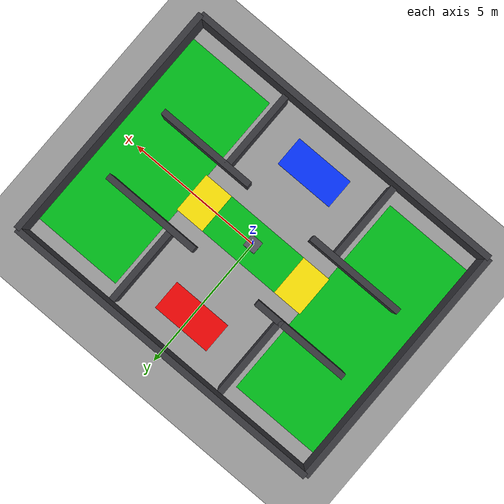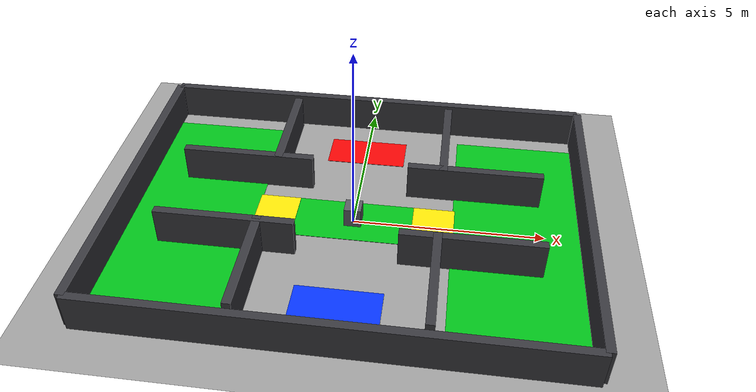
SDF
<?xml version="1.0"?>
<sdf version="1.6">
  <world name="corridors">
    <gravity>0 0 -9.8</gravity>
    <scene>
      <ambient>0.55 0.55 0.55 1</ambient>
      <background>0.78 0.82 0.86 1</background>
      <shadows>true</shadows>
    </scene>

    <light type="directional" name="sun">
      <cast_shadows>true</cast_shadows>
      <pose>0 0 12 0 0 0</pose>
      <diffuse>0.95 0.95 0.9 1</diffuse>
      <specular>0.15 0.15 0.15 1</specular>
      <direction>-0.35 0.25 -0.9</direction>
    </light>

    <model name="ground_plane">
      <static>true</static>
      <link name="link">
        <collision name="collision">
          <geometry><plane><normal>0 0 1</normal></plane></geometry>
          <surface>
            <friction><ode><mu>1.0</mu><mu2>1.0</mu2></ode></friction>
          </surface>
        </collision>
        <visual name="visual">
          <geometry><plane><normal>0 0 1</normal><size>80 80</size></plane></geometry>
          <material><ambient>0.62 0.62 0.62 1</ambient><diffuse>0.62 0.62 0.62 1</diffuse></material>
        </visual>
      </link>
    </model>

    <model name="green_west_room">
      <static>true</static>
      <pose>-4.4 0 0.012 0 0 0</pose>
      <link name="link">
        <visual name="visual">
          <geometry><box><size>3.6 7.8 0.01</size></box></geometry>
          <material><ambient>0.0 0.75 0.1 1</ambient><diffuse>0.0 0.75 0.1 1</diffuse></material>
        </visual>
      </link>
    </model>

    <model name="green_east_room">
      <static>true</static>
      <pose>4.4 0 0.012 0 0 0</pose>
      <link name="link">
        <visual name="visual">
          <geometry><box><size>3.6 7.8 0.01</size></box></geometry>
          <material><ambient>0.0 0.75 0.1 1</ambient><diffuse>0.0 0.75 0.1 1</diffuse></material>
        </visual>
      </link>
    </model>

    <model name="green_center_hall">
      <static>true</static>
      <pose>0 0 0.015 0 0 0</pose>
      <link name="link">
        <visual name="visual">
          <geometry><box><size>4.9 1.5 0.01</size></box></geometry>
          <material><ambient>0.0 0.75 0.1 1</ambient><diffuse>0.0 0.75 0.1 1</diffuse></material>
        </visual>
      </link>
    </model>

    <model name="yellow_security_doorway_west">
      <static>true</static>
      <pose>-2.1 0 0.02 0 0 0</pose>
      <link name="link">
        <visual name="visual">
          <geometry><box><size>1.1 1.5 0.01</size></box></geometry>
          <material><ambient>1.0 0.9 0.02 1</ambient><diffuse>1.0 0.9 0.02 1</diffuse></material>
        </visual>
      </link>
    </model>

    <model name="yellow_security_doorway_east">
      <static>true</static>
      <pose>2.1 0 0.02 0 0 0</pose>
      <link name="link">
        <visual name="visual">
          <geometry><box><size>1.1 1.5 0.01</size></box></geometry>
          <material><ambient>1.0 0.9 0.02 1</ambient><diffuse>1.0 0.9 0.02 1</diffuse></material>
        </visual>
      </link>
    </model>

    <model name="red_cctv_side_hall_skip">
      <static>true</static>
      <pose>0 3.1 0.022 0 0 0</pose>
      <link name="link">
        <visual name="visual">
          <geometry><box><size>2.2 1.1 0.01</size></box></geometry>
          <material><ambient>0.95 0.02 0.02 1</ambient><diffuse>0.95 0.02 0.02 1</diffuse></material>
        </visual>
      </link>
    </model>

    <model name="blue_already_checked_alcove">
      <static>true</static>
      <pose>0 -3.1 0.022 0 0 0</pose>
      <link name="link">
        <visual name="visual">
          <geometry><box><size>2.2 1.1 0.01</size></box></geometry>
          <material><ambient>0.02 0.2 1.0 1</ambient><diffuse>0.02 0.2 1.0 1</diffuse></material>
        </visual>
      </link>
    </model>

    <model name="outer_north">
      <static>true</static>
      <pose>0 4.5 0.500 0 0 0</pose>
      <link name="link">
        <collision name="collision"><geometry><box><size>12 0.22 1.0</size></box></geometry></collision>
        <visual name="visual"><geometry><box><size>12 0.22 1.0</size></box></geometry><material><ambient>0.22 0.22 0.24 1</ambient><diffuse>0.22 0.22 0.24 1</diffuse></material></visual>
      </link>
    </model>

    <model name="outer_south">
      <static>true</static>
      <pose>0 -4.5 0.500 0 0 0</pose>
      <link name="link">
        <collision name="collision"><geometry><box><size>12 0.22 1.0</size></box></geometry></collision>
        <visual name="visual"><geometry><box><size>12 0.22 1.0</size></box></geometry><material><ambient>0.22 0.22 0.24 1</ambient><diffuse>0.22 0.22 0.24 1</diffuse></material></visual>
      </link>
    </model>

    <model name="outer_east">
      <static>true</static>
      <pose>6.0 0 0.500 0 0 1.5708</pose>
      <link name="link">
        <collision name="collision"><geometry><box><size>9 0.22 1.0</size></box></geometry></collision>
        <visual name="visual"><geometry><box><size>9 0.22 1.0</size></box></geometry><material><ambient>0.22 0.22 0.24 1</ambient><diffuse>0.22 0.22 0.24 1</diffuse></material></visual>
      </link>
    </model>

    <model name="outer_west">
      <static>true</static>
      <pose>-6.0 0 0.500 0 0 1.5708</pose>
      <link name="link">
        <collision name="collision"><geometry><box><size>9 0.22 1.0</size></box></geometry></collision>
        <visual name="visual"><geometry><box><size>9 0.22 1.0</size></box></geometry><material><ambient>0.22 0.22 0.24 1</ambient><diffuse>0.22 0.22 0.24 1</diffuse></material></visual>
      </link>
    </model>

    <model name="north_barrier_west">
      <static>true</static>
      <pose>-3.1 1.35 0.500 0 0 0</pose>
      <link name="link">
        <collision name="collision"><geometry><box><size>3.6 0.22 1.0</size></box></geometry></collision>
        <visual name="visual"><geometry><box><size>3.6 0.22 1.0</size></box></geometry><material><ambient>0.22 0.22 0.24 1</ambient><diffuse>0.22 0.22 0.24 1</diffuse></material></visual>
      </link>
    </model>

    <model name="north_barrier_east">
      <static>true</static>
      <pose>3.1 1.35 0.500 0 0 0</pose>
      <link name="link">
        <collision name="collision"><geometry><box><size>3.6 0.22 1.0</size></box></geometry></collision>
        <visual name="visual"><geometry><box><size>3.6 0.22 1.0</size></box></geometry><material><ambient>0.22 0.22 0.24 1</ambient><diffuse>0.22 0.22 0.24 1</diffuse></material></visual>
      </link>
    </model>

    <model name="south_barrier_west">
      <static>true</static>
      <pose>-3.1 -1.35 0.500 0 0 0</pose>
      <link name="link">
        <collision name="collision"><geometry><box><size>3.6 0.22 1.0</size></box></geometry></collision>
        <visual name="visual"><geometry><box><size>3.6 0.22 1.0</size></box></geometry><material><ambient>0.22 0.22 0.24 1</ambient><diffuse>0.22 0.22 0.24 1</diffuse></material></visual>
      </link>
    </model>

    <model name="south_barrier_east">
      <static>true</static>
      <pose>3.1 -1.35 0.500 0 0 0</pose>
      <link name="link">
        <collision name="collision"><geometry><box><size>3.6 0.22 1.0</size></box></geometry></collision>
        <visual name="visual"><geometry><box><size>3.6 0.22 1.0</size></box></geometry><material><ambient>0.22 0.22 0.24 1</ambient><diffuse>0.22 0.22 0.24 1</diffuse></material></visual>
      </link>
    </model>

    <model name="left_room_inner_wall_top">
      <static>true</static>
      <pose>-2.25 2.75 0.500 0 0 0</pose>
      <link name="link">
        <collision name="collision"><geometry><box><size>0.22 3.0 1.0</size></box></geometry></collision>
        <visual name="visual"><geometry><box><size>0.22 3.0 1.0</size></box></geometry><material><ambient>0.22 0.22 0.24 1</ambient><diffuse>0.22 0.22 0.24 1</diffuse></material></visual>
      </link>
    </model>

    <model name="left_room_inner_wall_bottom">
      <static>true</static>
      <pose>-2.25 -2.75 0.500 0 0 0</pose>
      <link name="link">
        <collision name="collision"><geometry><box><size>0.22 3.0 1.0</size></box></geometry></collision>
        <visual name="visual"><geometry><box><size>0.22 3.0 1.0</size></box></geometry><material><ambient>0.22 0.22 0.24 1</ambient><diffuse>0.22 0.22 0.24 1</diffuse></material></visual>
      </link>
    </model>

    <model name="right_room_inner_wall_top">
      <static>true</static>
      <pose>2.25 2.75 0.500 0 0 0</pose>
      <link name="link">
        <collision name="collision"><geometry><box><size>0.22 3.0 1.0</size></box></geometry></collision>
        <visual name="visual"><geometry><box><size>0.22 3.0 1.0</size></box></geometry><material><ambient>0.22 0.22 0.24 1</ambient><diffuse>0.22 0.22 0.24 1</diffuse></material></visual>
      </link>
    </model>

    <model name="right_room_inner_wall_bottom">
      <static>true</static>
      <pose>2.25 -2.75 0.500 0 0 0</pose>
      <link name="link">
        <collision name="collision"><geometry><box><size>0.22 3.0 1.0</size></box></geometry></collision>
        <visual name="visual"><geometry><box><size>0.22 3.0 1.0</size></box></geometry><material><ambient>0.22 0.22 0.24 1</ambient><diffuse>0.22 0.22 0.24 1</diffuse></material></visual>
      </link>
    </model>

    <model name="small_corridor_crate_for_lidar">
      <static>true</static>
      <pose>0 0.0 0.275 0 0 0</pose>
      <link name="link">
        <collision name="collision"><geometry><box><size>0.45 0.45 0.55</size></box></geometry></collision>
        <visual name="visual"><geometry><box><size>0.45 0.45 0.55</size></box></geometry><material><ambient>0.35 0.35 0.38 1</ambient><diffuse>0.35 0.35 0.38 1</diffuse></material></visual>
      </link>
    </model>

  </world>
</sdf>
